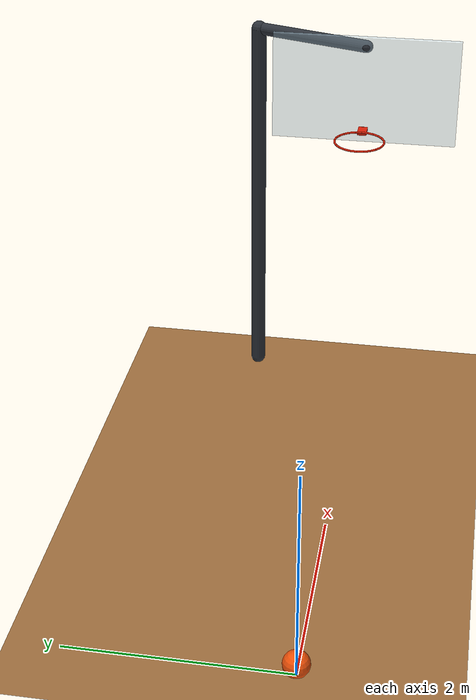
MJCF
<mujoco model="basketball_shot">
  <compiler angle="radian"/>
  <option timestep="0.002"/>
  <statistic center="2.5 0 2" extent="5"/>

  <visual>
    <headlight ambient="0.3 0.3 0.3" diffuse="0.7 0.7 0.7" specular="0.2 0.2 0.2"/>
  </visual>

  <worldbody>
    <light name="court_light" pos="2 -3 8" dir="0 0 -1" diffuse="0.8 0.8 0.8"/>
    <geom name="floor" type="plane" pos="0 0 0" size="12 8 0.1" friction="0.7 0.01 0.001" rgba="0.62 0.43 0.24 1"/>

    <body name="ball" pos="0 0 0.12">
      <freejoint name="ball_free"/>
      <geom name="ball" type="sphere" size="0.12" mass="0.624" friction="0.7 0.01 0.001" solref="0.008 1" rgba="0.95 0.32 0.035 1"/>
    </body>

    <body name="hoop" pos="4 0 3.05">
      <geom name="rim_00" type="capsule" fromto="0.238100 0 0 0.229987 0.061625 0" size="0.0095" rgba="0.85 0.12 0.025 1"/>
      <geom name="rim_01" type="capsule" fromto="0.229987 0.061625 0 0.206201 0.119050 0" size="0.0095" rgba="0.85 0.12 0.025 1"/>
      <geom name="rim_02" type="capsule" fromto="0.206201 0.119050 0 0.168362 0.168362 0" size="0.0095" rgba="0.85 0.12 0.025 1"/>
      <geom name="rim_03" type="capsule" fromto="0.168362 0.168362 0 0.119050 0.206201 0" size="0.0095" rgba="0.85 0.12 0.025 1"/>
      <geom name="rim_04" type="capsule" fromto="0.119050 0.206201 0 0.061625 0.229987 0" size="0.0095" rgba="0.85 0.12 0.025 1"/>
      <geom name="rim_05" type="capsule" fromto="0.061625 0.229987 0 0 0.238100 0" size="0.0095" rgba="0.85 0.12 0.025 1"/>
      <geom name="rim_06" type="capsule" fromto="0 0.238100 0 -0.061625 0.229987 0" size="0.0095" rgba="0.85 0.12 0.025 1"/>
      <geom name="rim_07" type="capsule" fromto="-0.061625 0.229987 0 -0.119050 0.206201 0" size="0.0095" rgba="0.85 0.12 0.025 1"/>
      <geom name="rim_08" type="capsule" fromto="-0.119050 0.206201 0 -0.168362 0.168362 0" size="0.0095" rgba="0.85 0.12 0.025 1"/>
      <geom name="rim_09" type="capsule" fromto="-0.168362 0.168362 0 -0.206201 0.119050 0" size="0.0095" rgba="0.85 0.12 0.025 1"/>
      <geom name="rim_10" type="capsule" fromto="-0.206201 0.119050 0 -0.229987 0.061625 0" size="0.0095" rgba="0.85 0.12 0.025 1"/>
      <geom name="rim_11" type="capsule" fromto="-0.229987 0.061625 0 -0.238100 0 0" size="0.0095" rgba="0.85 0.12 0.025 1"/>
      <geom name="rim_12" type="capsule" fromto="-0.238100 0 0 -0.229987 -0.061625 0" size="0.0095" rgba="0.85 0.12 0.025 1"/>
      <geom name="rim_13" type="capsule" fromto="-0.229987 -0.061625 0 -0.206201 -0.119050 0" size="0.0095" rgba="0.85 0.12 0.025 1"/>
      <geom name="rim_14" type="capsule" fromto="-0.206201 -0.119050 0 -0.168362 -0.168362 0" size="0.0095" rgba="0.85 0.12 0.025 1"/>
      <geom name="rim_15" type="capsule" fromto="-0.168362 -0.168362 0 -0.119050 -0.206201 0" size="0.0095" rgba="0.85 0.12 0.025 1"/>
      <geom name="rim_16" type="capsule" fromto="-0.119050 -0.206201 0 -0.061625 -0.229987 0" size="0.0095" rgba="0.85 0.12 0.025 1"/>
      <geom name="rim_17" type="capsule" fromto="-0.061625 -0.229987 0 0 -0.238100 0" size="0.0095" rgba="0.85 0.12 0.025 1"/>
      <geom name="rim_18" type="capsule" fromto="0 -0.238100 0 0.061625 -0.229987 0" size="0.0095" rgba="0.85 0.12 0.025 1"/>
      <geom name="rim_19" type="capsule" fromto="0.061625 -0.229987 0 0.119050 -0.206201 0" size="0.0095" rgba="0.85 0.12 0.025 1"/>
      <geom name="rim_20" type="capsule" fromto="0.119050 -0.206201 0 0.168362 -0.168362 0" size="0.0095" rgba="0.85 0.12 0.025 1"/>
      <geom name="rim_21" type="capsule" fromto="0.168362 -0.168362 0 0.206201 -0.119050 0" size="0.0095" rgba="0.85 0.12 0.025 1"/>
      <geom name="rim_22" type="capsule" fromto="0.206201 -0.119050 0 0.229987 -0.061625 0" size="0.0095" rgba="0.85 0.12 0.025 1"/>
      <geom name="rim_23" type="capsule" fromto="0.229987 -0.061625 0 0.238100 0 0" size="0.0095" rgba="0.85 0.12 0.025 1"/>
      <geom name="rim_mount" type="box" pos="0.31 0 -0.015" size="0.075 0.045 0.015" rgba="0.85 0.12 0.025 1"/>
      <geom name="backboard" type="box" pos="0.406 0 0.375" size="0.025 0.9 0.525" rgba="0.75 0.88 0.95 0.4"/>
    </body>

    <body name="hoop_support" pos="0 0 0">
      <geom name="support_post" type="capsule" fromto="4.8 1.1 0.075 4.8 1.1 3.85" size="0.075" rgba="0.18 0.2 0.23 1"/>
      <geom name="support_arm" type="capsule" fromto="4.8 1.1 3.85 4.43 0 3.85" size="0.06" rgba="0.18 0.2 0.23 1"/>
    </body>
  </worldbody>

  <keyframe>
    <key name="start" time="0" qpos="0 0 0.12 1 0 0 0" qvel="2.5 0 9.67925 0 0 0"/>
  </keyframe>
</mujoco>
